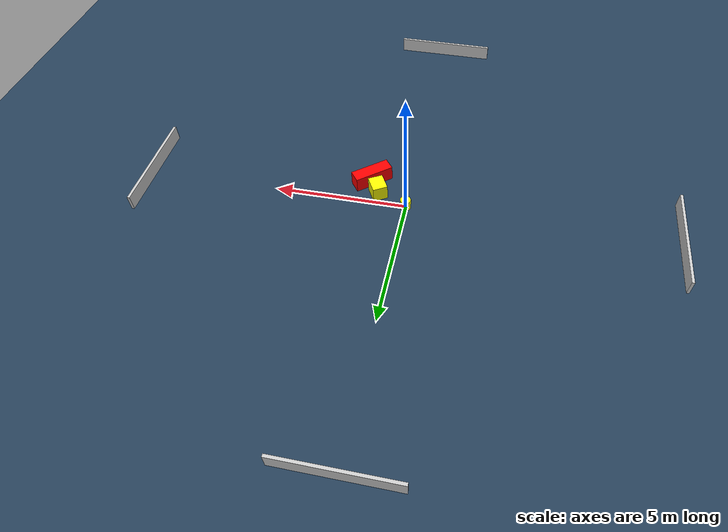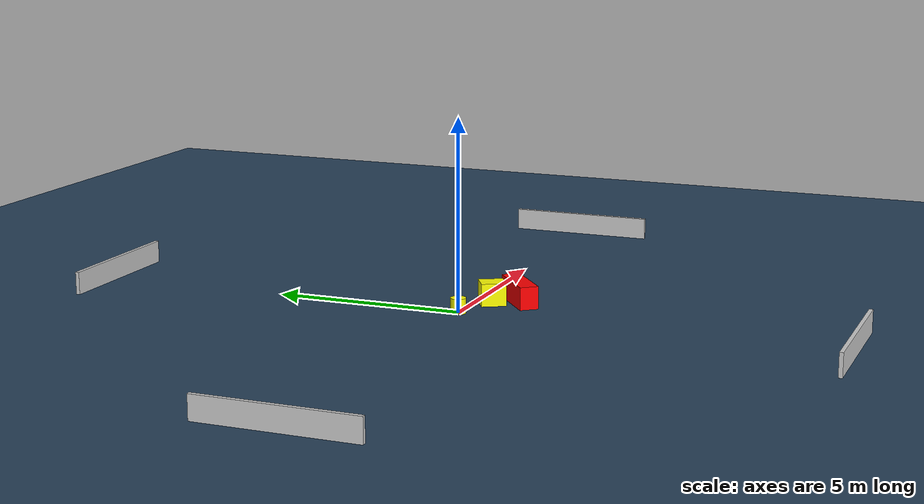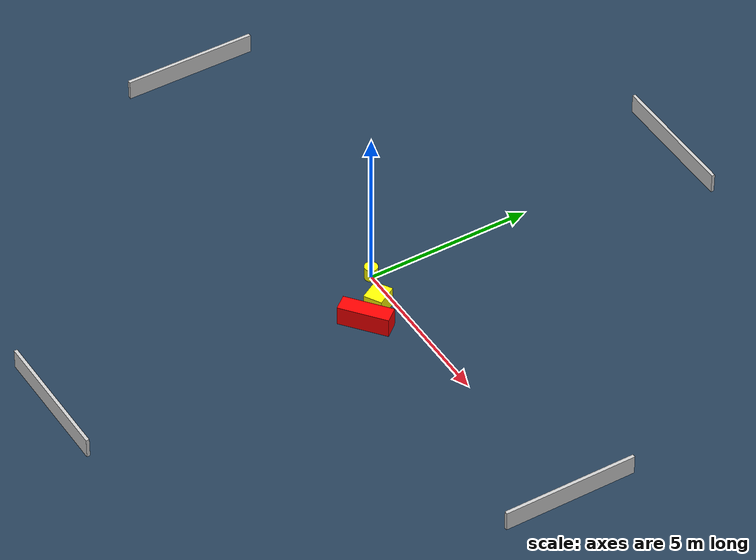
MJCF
<?xml version="1.0" ?>
<mujoco model="generated_environment">
  <option timestep="0.01" integrator="RK4" cone="elliptic"/>
  <default>
    <geom density="1"/>
  </default>
  <asset>
    <texture builtin="gradient" height="3072" name="skybox" rgb1="0.3 0.5 0.7" rgb2="0 0 0" type="skybox" width="512"/>
    <texture builtin="checker" height="300" name="groundplane" rgb1="0.2 0.3 0.4" rgb2="0.1 0.2 0.3" type="2d" width="300"/>
    <material name="groundplane" reflectance="0.2" texrepeat="5 5" texture="groundplane"/>
  </asset>
  <worldbody>
    <light dir="0 0 -1" directional="true" pos="0 0 1.5"/>
    <geom condim="3" friction="0.5 0.005 0.001" material="groundplane" name="floor" pos="0 0 0" size="0 0 0.05" type="plane"/>
    <body name="walls">
      <geom name="wall_1" condim="4" pos="-10.0 0.0 0.3" rgba="0.800000011920929 0.800000011920929 0.800000011920929 1.0" size="0.05 2.0 0.3" type="box"/>
      <geom name="wall_2" condim="4" pos="10.0 0.0 0.3" rgba="0.800000011920929 0.800000011920929 0.800000011920929 1.0" size="0.05 2.0 0.3" type="box"/>
      <geom name="wall_3" condim="4" pos="0.0 -10.0 0.3" rgba="0.800000011920929 0.800000011920929 0.800000011920929 1.0" size="2.0 0.05 0.3" type="box"/>
      <geom name="wall_4" condim="4" pos="0.0 10.0 0.3" rgba="0.800000011920929 0.800000011920929 0.800000011920929 1.0" size="2.0 0.05 0.3" type="box"/>
    </body>
    <body name="robot">
      <joint name="joint_x" type="slide" pos="0 0 0" axis="1 0 0"/>
      <joint name="joint_y" type="slide" pos="0 0 0" axis="0 1 0"/>
      <geom name="robot" type="cylinder" pos="0.0 0.0 0.2" size="0.2 0.2 0.0" mass="5.0" friction="1.0 0.005 0.0001" condim="4" rgba="1.0 1.0 0.0 1.0"/>
    </body>
    <body name="obstacle_1_movable">
      <geom name="obstacle_1_movable" condim="4" pos="1.1595284998199789 -0.4816743497265621 0.3" euler="0 0 209.95015335551446" friction="0.0 0.005 0.001" rgba="1.0 1.0 0.0 1.0" size="0.27990797049259514 0.32710390973535103 0.3" type="box" mass="0.1"/>
      <joint type="free"/>
    </body>
    <body name="obstacle_2_static">
      <geom name="obstacle_2_static" condim="4" pos="1.5266581252555467 -1.1006571235927662 0.3" euler="0 0 128.71536732289417" friction="0.0 0.005 0.001" rgba="1.0 0.0 0.0 1.0" size="0.24543713816050322 0.7465874018520835 0.3" type="box"/>
    </body>
  </worldbody>
  <actuator>
    <motor name="actuator_x" joint="joint_x" gear="1" ctrlrange="-1 1"/>
    <motor name="actuator_y" joint="joint_y" gear="1" ctrlrange="-1 1"/>
  </actuator>
</mujoco>
